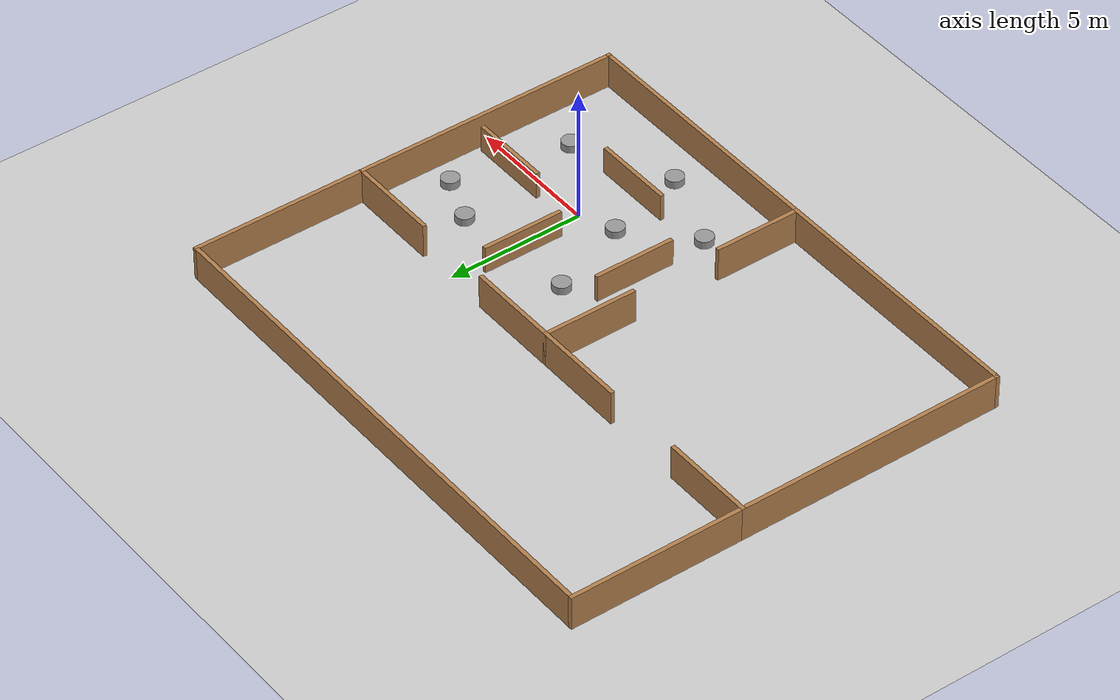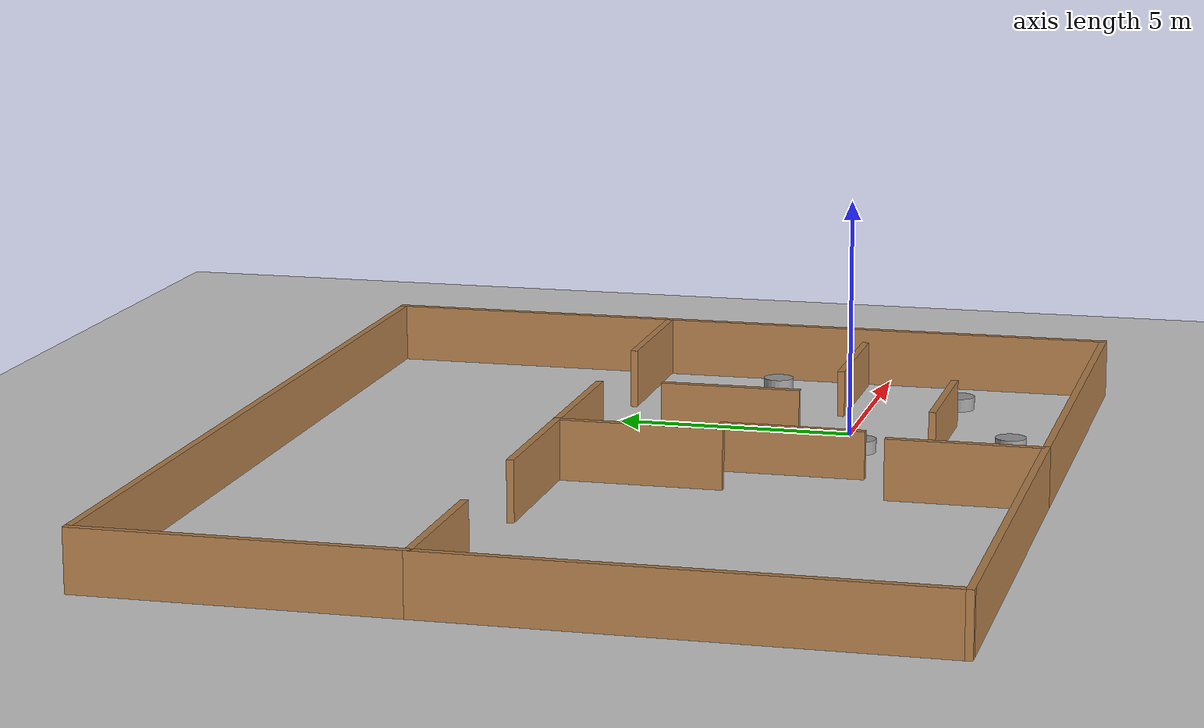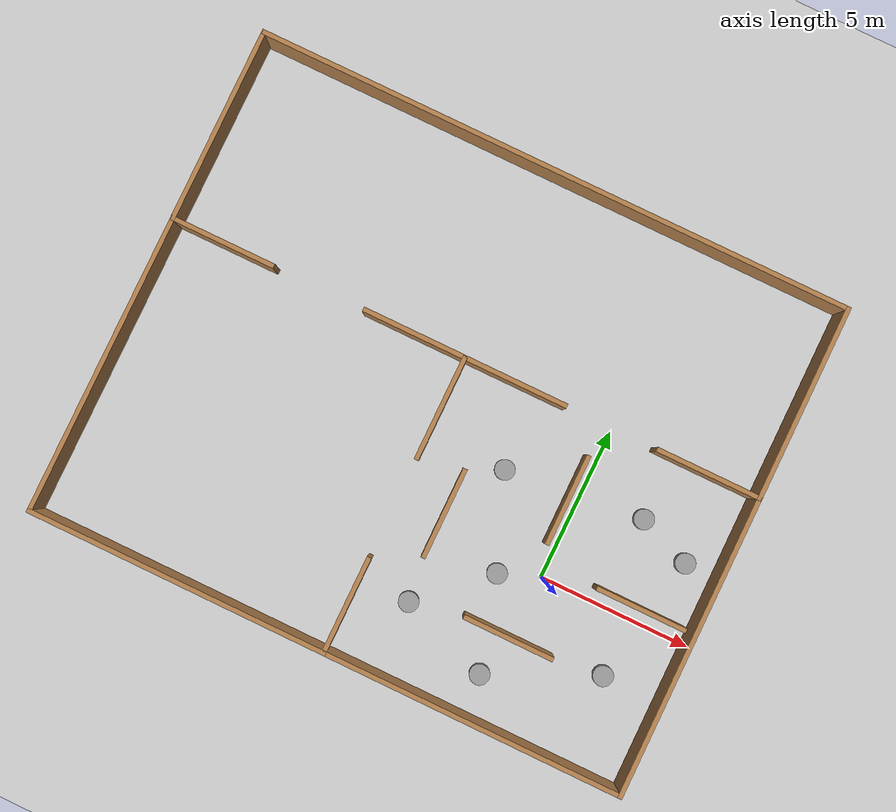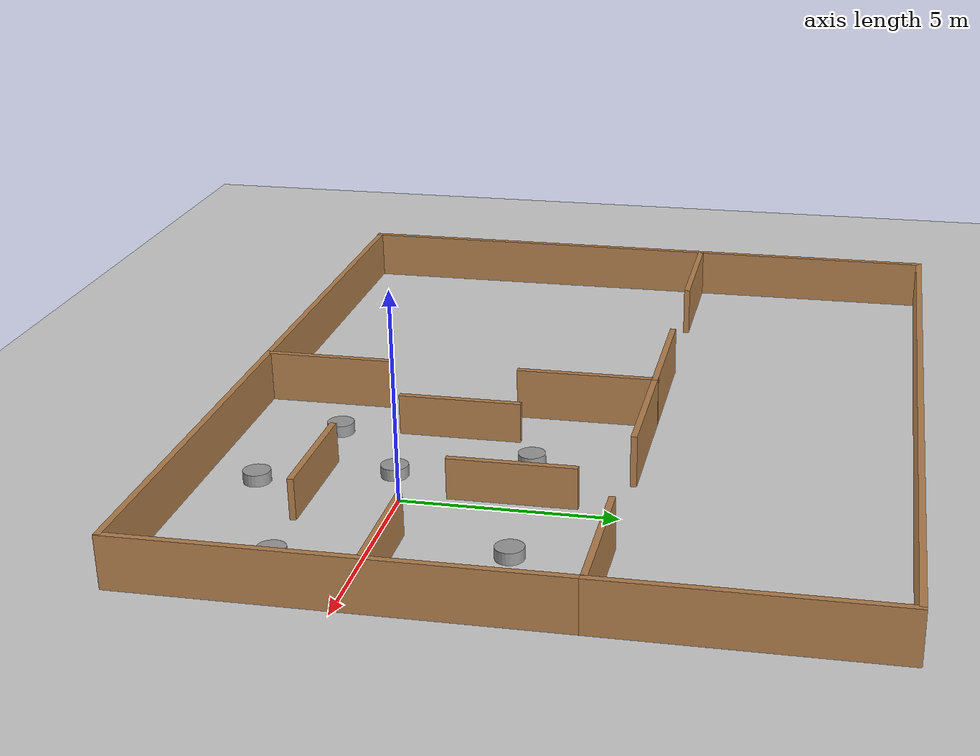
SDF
<sdf version="1.6">
 <world name="default">
  <light name="sun" type="directional">
   <pose>0 0 10 0 -0 0</pose>
   <diffuse>0.8 0.8 0.8 1</diffuse>
   <specular>0.2 0.2 0.2 1</specular>
   <attenuation>
    <range>1000</range>
    <constant>0.9</constant>
    <linear>0.01</linear>
    <quadratic>0.001</quadratic>
   </attenuation>
   <direction>-0.5 0.1 -0.9</direction>
  </light>
  <model name="ground_plane">
   <static>1</static>
   <link name="link">
    <collision name="collision">
     <geometry><plane><normal>0 0 1</normal><size>100 100</size></plane></geometry>
     <surface><friction><ode><mu>100</mu><mu2>50</mu2></ode></friction></surface>
    </collision>
    <visual name="visual">
     <cast_shadows>0</cast_shadows>
     <geometry><plane><normal>0 0 1</normal><size>100 100</size></plane></geometry>
     <material>
      <script><uri>file://media/materials/scripts/gazebo.material</uri><name>Gazebo/Grey</name></script>
     </material>
    </visual>
   </link>
  </model>
  <physics name="default_physics" default="0" type="ode">
   <real_time_update_rate>1000</real_time_update_rate>
   <max_step_size>0.001</max_step_size>
   <real_time_factor>1</real_time_factor>
   <ode>
    <solver>
     <type>quick</type>
     <iters>150</iters>
     <precon_iters>0</precon_iters>
     <sor>1.4</sor>
     <use_dynamic_moi_rescaling>1</use_dynamic_moi_rescaling>
    </solver>
    <constraints>
     <cfm>1e-05</cfm>
     <erp>0.2</erp>
     <contact_max_correcting_vel>2000</contact_max_correcting_vel>
     <contact_surface_layer>0.01</contact_surface_layer>
    </constraints>
   </ode>
  </physics>
  <scene><ambient>0.4 0.4 0.4 1</ambient><background>0.7 0.7 0.7 1</background><shadows>1</shadows></scene>
  <gravity>0 0 -9.8</gravity>
  <magnetic_field>6e-06 2.3e-05 -4.2e-05</magnetic_field>
  <atmosphere type="adiabatic"/>
  <spherical_coordinates>
   <surface_model>EARTH_WGS84</surface_model>
   <latitude_deg>0</latitude_deg>
   <longitude_deg>0</longitude_deg>
   <elevation>0</elevation>
   <heading_deg>0</heading_deg>
  </spherical_coordinates>
  <audio><device>default</device></audio>
  <model name="multi_rooms">
   <pose>-5.066 3.299 0 0 -0 0</pose>
   <link name="Wall_11">
    <collision name="Wall_11_Collision">
     <geometry><box><size>3.25 0.15 1.25</size></box></geometry>
     <pose>0 0 0.625 0 -0 0</pose>
    </collision>
    <visual name="Wall_11_Visual">
     <pose>0 0 0.625 0 -0 0</pose>
     <geometry><box><size>3.25 0.15 1.25</size></box></geometry>
     <material>
      <script><uri>file://media/materials/scripts/gazebo.material</uri><name>Gazebo/Wood</name></script>
      <ambient>1 1 1 1</ambient>
     </material>
     <meta><layer>0</layer></meta>
    </visual>
    <pose>0 -6.55 0 0 -0 1.5708</pose>
   </link>
   <link name="Wall_13">
    <collision name="Wall_13_Collision">
     <geometry><box><size>10 0.15 1.25</size></box></geometry>
     <pose>0 0 0.625 0 -0 0</pose>
    </collision>
    <visual name="Wall_13_Visual">
     <pose>0 0 0.625 0 -0 0</pose>
     <geometry><box><size>10 0.15 1.25</size></box></geometry>
     <material>
      <script><uri>file://media/materials/scripts/gazebo.material</uri><name>Gazebo/Wood</name></script>
      <ambient>1 1 1 1</ambient>
     </material>
     <meta><layer>0</layer></meta>
    </visual>
    <pose>-4.925 -8.1 0 0 -0 3.14159</pose>
   </link>
   <link name="Wall_2">
    <collision name="Wall_2_Collision">
     <geometry><box><size>10 0.15 1.25</size></box></geometry>
     <pose>0 0 0.625 0 -0 0</pose>
    </collision>
    <visual name="Wall_2_Visual">
     <pose>0 0 0.625 0 -0 0</pose>
     <geometry><box><size>10 0.15 1.25</size></box></geometry>
     <material>
      <script><uri>file://media/materials/scripts/gazebo.material</uri><name>Gazebo/Wood</name></script>
      <ambient>1 1 1 1</ambient>
     </material>
     <meta><layer>0</layer></meta>
    </visual>
    <pose>4.925 -8.1 0 0 -0 3.14159</pose>
   </link>
   <link name="Wall_20">
    <collision name="Wall_20_Collision">
     <geometry><box><size>3.5 0.15 1.25</size></box></geometry>
     <pose>0 0 0.625 0 -0 0</pose>
    </collision>
    <visual name="Wall_20_Visual">
     <pose>0 0 0.625 0 -0 0</pose>
     <geometry><box><size>3.5 0.15 1.25</size></box></geometry>
     <material>
      <script><uri>file://media/materials/scripts/gazebo.material</uri><name>Gazebo/Wood</name></script>
      <ambient>1 1 1 1</ambient>
     </material>
     <meta><layer>0</layer></meta>
    </visual>
    <pose>-1.675 1.75 0 0 -0 3.14159</pose>
   </link>
   <link name="Wall_22">
    <collision name="Wall_22_Collision">
     <geometry><box><size>3.5 0.15 1.25</size></box></geometry>
     <pose>0 0 0.625 0 -0 0</pose>
    </collision>
    <visual name="Wall_22_Visual">
     <pose>0 0 0.625 0 -0 0</pose>
     <geometry><box><size>3.5 0.15 1.25</size></box></geometry>
     <material>
      <script><uri>file://media/materials/scripts/gazebo.material</uri><name>Gazebo/Wood</name></script>
      <ambient>1 1 1 1</ambient>
     </material>
     <meta><layer>0</layer></meta>
    </visual>
    <pose>1.675 1.75 0 0 -0 0</pose>
   </link>
   <link name="Wall_24">
    <collision name="Wall_24_Collision">
     <geometry><box><size>3.5 0.15 1.25</size></box></geometry>
     <pose>0 0 0.625 0 -0 0</pose>
    </collision>
    <visual name="Wall_24_Visual">
     <pose>0 0 0.625 0 -0 0</pose>
     <geometry><box><size>3.5 0.15 1.25</size></box></geometry>
     <material>
      <script><uri>file://media/materials/scripts/gazebo.material</uri><name>Gazebo/Wood</name></script>
      <ambient>1 1 1 1</ambient>
     </material>
     <meta><layer>0</layer></meta>
    </visual>
    <pose>8.175 1.75 0 0 -0 3.14159</pose>
   </link>
   <link name="Wall_34">
    <collision name="Wall_34_Collision">
     <geometry><box><size>10 0.15 1.25</size></box></geometry>
     <pose>0 0 0.625 0 -0 0</pose>
    </collision>
    <visual name="Wall_34_Visual">
     <pose>0 0 0.625 0 -0 0</pose>
     <geometry><box><size>10 0.15 1.25</size></box></geometry>
     <material>
      <script><uri>file://media/materials/scripts/gazebo.material</uri><name>Gazebo/Wood</name></script>
      <ambient>1 1 1 1</ambient>
     </material>
     <meta><layer>0</layer></meta>
    </visual>
    <pose>-9.85 -3.175 0 0 -0 1.5708</pose>
   </link>
   <link name="Wall_35">
    <collision name="Wall_35_Collision">
     <geometry><box><size>3.5 0.15 1.25</size></box></geometry>
     <pose>0 0 0.625 0 -0 0</pose>
    </collision>
    <visual name="Wall_35_Visual">
     <pose>0 0 0.625 0 -0 0</pose>
     <geometry><box><size>3.5 0.15 1.25</size></box></geometry>
     <material>
      <script><uri>file://media/materials/scripts/gazebo.material</uri><name>Gazebo/Wood</name></script>
      <ambient>1 1 1 1</ambient>
     </material>
     <meta><layer>0</layer></meta>
    </visual>
    <pose>-8.175 1.75 0 0 -0 0</pose>
   </link>
   <link name="Wall_40">
    <collision name="Wall_40_Collision">
     <geometry><box><size>6.5 0.15 1.25</size></box></geometry>
     <pose>0 0 0.625 0 -0 0</pose>
    </collision>
    <visual name="Wall_40_Visual">
     <pose>0 0 0.625 0 -0 0</pose>
     <geometry><box><size>6.5 0.15 1.25</size></box></geometry>
     <material>
      <script><uri>file://media/materials/scripts/gazebo.material</uri><name>Gazebo/Wood</name></script>
      <ambient>1 1 1 1</ambient>
     </material>
     <meta><layer>0</layer></meta>
    </visual>
    <pose>-9.85 4.925 0 0 -0 1.5708</pose>
   </link>
   <link name="Wall_41">
    <collision name="Wall_41_Collision">
     <geometry><box><size>19.75 0.15 1.25</size></box></geometry>
     <pose>0 0 0.625 0 -0 0</pose>
    </collision>
    <visual name="Wall_41_Visual">
     <pose>0 0 0.625 0 -0 0</pose>
     <geometry><box><size>19.75 0.15 1.25</size></box></geometry>
     <material>
      <script><uri>file://media/materials/scripts/gazebo.material</uri><name>Gazebo/Wood</name></script>
      <ambient>1 1 1 1</ambient>
     </material>
     <meta><layer>0</layer></meta>
    </visual>
    <pose>-0.05 8.1 0 0 -0 0</pose>
   </link>
   <link name="Wall_43">
    <collision name="Wall_43_Collision">
     <geometry><box><size>6.5 0.15 1.25</size></box></geometry>
     <pose>0 0 0.625 0 -0 0</pose>
    </collision>
    <visual name="Wall_43_Visual">
     <pose>0 0 0.625 0 -0 0</pose>
     <geometry><box><size>6.5 0.15 1.25</size></box></geometry>
     <material>
      <script><uri>file://media/materials/scripts/gazebo.material</uri><name>Gazebo/Wood</name></script>
      <ambient>1 1 1 1</ambient>
     </material>
     <meta><layer>0</layer></meta>
    </visual>
    <pose>9.85 4.925 0 0 -0 1.5708</pose>
   </link>
   <link name="Wall_5">
    <collision name="Wall_5_Collision">
     <geometry><box><size>10 0.15 1.25</size></box></geometry>
     <pose>0 0 0.625 0 -0 0</pose>
    </collision>
    <visual name="Wall_5_Visual">
     <pose>0 0 0.625 0 -0 0</pose>
     <geometry><box><size>10 0.15 1.25</size></box></geometry>
     <material>
      <script><uri>file://media/materials/scripts/gazebo.material</uri><name>Gazebo/Wood</name></script>
      <ambient>1 1 1 1</ambient>
     </material>
     <meta><layer>0</layer></meta>
    </visual>
    <pose>9.85 -3.175 0 0 -0 1.5708</pose>
   </link>
   <link name="Wall_9">
    <collision name="Wall_9_Collision">
     <geometry><box><size>3.5 0.15 1.25</size></box></geometry>
     <pose>0 0 0.625 0 -0 0</pose>
    </collision>
    <visual name="Wall_9_Visual">
     <pose>0 0 0.625 0 -0 0</pose>
     <geometry><box><size>3.5 0.15 1.25</size></box></geometry>
     <material>
      <script><uri>file://media/materials/scripts/gazebo.material</uri><name>Gazebo/Wood</name></script>
      <ambient>1 1 1 1</ambient>
     </material>
     <meta><layer>0</layer></meta>
    </visual>
    <pose>0 0.075 0 0 -0 -1.5708</pose>
   </link>
   <static>1</static>
  </model>
  <model name="h_wall">
   <pose>-0.380823 2.51022 0 0 -0 0</pose>
   <link name="Wall_0">
    <collision name="Wall_0_Collision">
     <geometry><box><size>3 0.15 1</size></box></geometry>
     <pose>0 0 0.5 0 -0 0</pose>
    </collision>
    <visual name="Wall_0_Visual">
     <pose>0 0 0.5 0 -0 0</pose>
     <geometry><box><size>3 0.15 1</size></box></geometry>
     <material>
      <script><uri>file://media/materials/scripts/gazebo.material</uri><name>Gazebo/Wood</name></script>
      <ambient>1 1 1 1</ambient>
     </material>
     <meta><layer>0</layer></meta>
    </visual>
    <pose>0 0 0 0 -0 -1.5708</pose>
   </link>
   <static>1</static>
  </model>
  <model name="v_wall">
   <pose>-0.218292 -2.0316 0 0 -0 0</pose>
   <link name="Wall_0">
    <collision name="Wall_0_Collision">
     <geometry><box><size>3 0.15 1</size></box></geometry>
     <pose>0 0 0.5 0 -0 0</pose>
    </collision>
    <visual name="Wall_0_Visual">
     <pose>0 0 0.5 0 -0 0</pose>
     <geometry><box><size>3 0.15 1</size></box></geometry>
     <material>
      <script><uri>file://media/materials/scripts/gazebo.material</uri><name>Gazebo/Wood</name></script>
      <ambient>1 1 1 1</ambient>
     </material>
     <meta><layer>0</layer></meta>
    </visual>
   </link>
   <static>1</static>
  </model>
  <model name="c0">
   <link name="link">
    <inertial>
     <mass>1</mass>
     <inertia><ixx>0.145833</ixx><ixy>0</ixy><ixz>0</ixz><iyy>0.145833</iyy><iyz>0</iyz><izz>0.125</izz></inertia>
    </inertial>
    <visual name="visual">
     <geometry><cylinder><radius>0.326555</radius><length>0.51474</length></cylinder></geometry>
     <material>
      <script><name>Gazebo/Grey</name><uri>file://media/materials/scripts/gazebo.material</uri></script>
     </material>
    </visual>
    <collision name="collision">
     <geometry><cylinder><radius>0.326555</radius><length>0.51474</length></cylinder></geometry>
     <surface>
      <friction>
       <ode><mu>1</mu><mu2>1</mu2><fdir1>0 0 0</fdir1><slip1>0</slip1><slip2>0</slip2></ode>
       <torsional>
        <coefficient>1</coefficient>
        <patch_radius>0</patch_radius>
        <surface_radius>0</surface_radius>
        <use_patch_radius>1</use_patch_radius>
        <ode><slip>0</slip></ode>
       </torsional>
      </friction>
      <bounce><restitution_coefficient>0</restitution_coefficient><threshold>1e+06</threshold></bounce>
      <contact>
       <collide_without_contact>0</collide_without_contact>
       <collide_without_contact_bitmask>1</collide_without_contact_bitmask>
       <collide_bitmask>1</collide_bitmask>
       <ode>
        <soft_cfm>0</soft_cfm>
        <soft_erp>0.2</soft_erp>
        <kp>1e+13</kp>
        <kd>1</kd>
        <max_vel>0.01</max_vel>
        <min_depth>0</min_depth>
       </ode>
       <bullet>
        <split_impulse>1</split_impulse>
        <split_impulse_penetration_threshold>-0.01</split_impulse_penetration_threshold>
        <soft_cfm>0</soft_cfm>
        <soft_erp>0.2</soft_erp>
        <kp>1e+13</kp>
        <kd>1</kd>
       </bullet>
      </contact>
     </surface>
    </collision>
   </link>
   <static>1</static>
   <pose>-3.39752 -2.43216 0 0 -0 0</pose>
  </model>
  <model name="c0_0">
   <link name="link">
    <inertial>
     <mass>1</mass>
     <inertia><ixx>0.145833</ixx><ixy>0</ixy><ixz>0</ixz><iyy>0.145833</iyy><iyz>0</iyz><izz>0.125</izz></inertia>
    </inertial>
    <visual name="visual">
     <geometry><cylinder><radius>0.326555</radius><length>0.51474</length></cylinder></geometry>
     <material>
      <script><name>Gazebo/Grey</name><uri>file://media/materials/scripts/gazebo.material</uri></script>
     </material>
    </visual>
    <collision name="collision">
     <geometry><cylinder><radius>0.326555</radius><length>0.51474</length></cylinder></geometry>
     <surface>
      <friction>
       <ode><mu>1</mu><mu2>1</mu2><fdir1>0 0 0</fdir1><slip1>0</slip1><slip2>0</slip2></ode>
       <torsional>
        <coefficient>1</coefficient>
        <patch_radius>0</patch_radius>
        <surface_radius>0</surface_radius>
        <use_patch_radius>1</use_patch_radius>
        <ode><slip>0</slip></ode>
       </torsional>
      </friction>
      <bounce><restitution_coefficient>0</restitution_coefficient><threshold>1e+06</threshold></bounce>
      <contact>
       <collide_without_contact>0</collide_without_contact>
       <collide_without_contact_bitmask>1</collide_without_contact_bitmask>
       <collide_bitmask>1</collide_bitmask>
       <ode>
        <soft_cfm>0</soft_cfm>
        <soft_erp>0.2</soft_erp>
        <kp>1e+13</kp>
        <kd>1</kd>
        <max_vel>0.01</max_vel>
        <min_depth>0</min_depth>
       </ode>
       <bullet>
        <split_impulse>1</split_impulse>
        <split_impulse_penetration_threshold>-0.01</split_impulse_penetration_threshold>
        <soft_cfm>0</soft_cfm>
        <soft_erp>0.2</soft_erp>
        <kp>1e+13</kp>
        <kd>1</kd>
       </bullet>
      </contact>
     </surface>
    </collision>
   </link>
   <static>1</static>
   <pose>2.07261 2.99442 0 0 -0 0</pose>
  </model>
  <model name="c0_1">
   <link name="link">
    <inertial>
     <mass>1</mass>
     <inertia><ixx>0.145833</ixx><ixy>0</ixy><ixz>0</ixz><iyy>0.145833</iyy><iyz>0</iyz><izz>0.125</izz></inertia>
    </inertial>
    <visual name="visual">
     <geometry><cylinder><radius>0.326555</radius><length>0.51474</length></cylinder></geometry>
     <material>
      <script><name>Gazebo/Grey</name><uri>file://media/materials/scripts/gazebo.material</uri></script>
     </material>
    </visual>
    <collision name="collision">
     <geometry><cylinder><radius>0.326555</radius><length>0.51474</length></cylinder></geometry>
     <surface>
      <friction>
       <ode><mu>1</mu><mu2>1</mu2><fdir1>0 0 0</fdir1><slip1>0</slip1><slip2>0</slip2></ode>
       <torsional>
        <coefficient>1</coefficient>
        <patch_radius>0</patch_radius>
        <surface_radius>0</surface_radius>
        <use_patch_radius>1</use_patch_radius>
        <ode><slip>0</slip></ode>
       </torsional>
      </friction>
      <bounce><restitution_coefficient>0</restitution_coefficient><threshold>1e+06</threshold></bounce>
      <contact>
       <collide_without_contact>0</collide_without_contact>
       <collide_without_contact_bitmask>1</collide_without_contact_bitmask>
       <collide_bitmask>1</collide_bitmask>
       <ode>
        <soft_cfm>0</soft_cfm>
        <soft_erp>0.2</soft_erp>
        <kp>1e+13</kp>
        <kd>1</kd>
        <max_vel>0.01</max_vel>
        <min_depth>0</min_depth>
       </ode>
       <bullet>
        <split_impulse>1</split_impulse>
        <split_impulse_penetration_threshold>-0.01</split_impulse_penetration_threshold>
        <soft_cfm>0</soft_cfm>
        <soft_erp>0.2</soft_erp>
        <kp>1e+13</kp>
        <kd>1</kd>
       </bullet>
      </contact>
     </surface>
    </collision>
   </link>
   <static>1</static>
   <pose>2.98172 -1.89646 0 0 -0 0</pose>
  </model>
  <model name="c0_2">
   <link name="link">
    <inertial>
     <mass>1</mass>
     <inertia><ixx>0.145833</ixx><ixy>0</ixy><ixz>0</ixz><iyy>0.145833</iyy><iyz>0</iyz><izz>0.125</izz></inertia>
    </inertial>
    <visual name="visual">
     <geometry><cylinder><radius>0.326555</radius><length>0.51474</length></cylinder></geometry>
     <material>
      <script><name>Gazebo/Grey</name><uri>file://media/materials/scripts/gazebo.material</uri></script>
     </material>
    </visual>
    <collision name="collision">
     <geometry><cylinder><radius>0.326555</radius><length>0.51474</length></cylinder></geometry>
     <surface>
      <friction>
       <ode><mu>1</mu><mu2>1</mu2><fdir1>0 0 0</fdir1><slip1>0</slip1><slip2>0</slip2></ode>
       <torsional>
        <coefficient>1</coefficient>
        <patch_radius>0</patch_radius>
        <surface_radius>0</surface_radius>
        <use_patch_radius>1</use_patch_radius>
        <ode><slip>0</slip></ode>
       </torsional>
      </friction>
      <bounce><restitution_coefficient>0</restitution_coefficient><threshold>1e+06</threshold></bounce>
      <contact>
       <collide_without_contact>0</collide_without_contact>
       <collide_without_contact_bitmask>1</collide_without_contact_bitmask>
       <collide_bitmask>1</collide_bitmask>
       <ode>
        <soft_cfm>0</soft_cfm>
        <soft_erp>0.2</soft_erp>
        <kp>1e+13</kp>
        <kd>1</kd>
        <max_vel>0.01</max_vel>
        <min_depth>0</min_depth>
       </ode>
       <bullet>
        <split_impulse>1</split_impulse>
        <split_impulse_penetration_threshold>-0.01</split_impulse_penetration_threshold>
        <soft_cfm>0</soft_cfm>
        <soft_erp>0.2</soft_erp>
        <kp>1e+13</kp>
        <kd>1</kd>
       </bullet>
      </contact>
     </surface>
    </collision>
   </link>
   <static>1</static>
   <pose>-2.46825 2.51908 0 0 -0 0</pose>
  </model>
  <model name="v_wall_0">
   <pose>3.03934 0.481545 0 0 -0 0</pose>
   <link name="Wall_0">
    <collision name="Wall_0_Collision">
     <geometry><box><size>3 0.15 1</size></box></geometry>
     <pose>0 0 0.5 0 -0 0</pose>
    </collision>
    <visual name="Wall_0_Visual">
     <pose>0 0 0.5 0 -0 0</pose>
     <geometry><box><size>3 0.15 1</size></box></geometry>
     <material>
      <script><uri>file://media/materials/scripts/gazebo.material</uri><name>Gazebo/Wood</name></script>
      <ambient>1 1 1 1</ambient>
     </material>
     <meta><layer>0</layer></meta>
    </visual>
   </link>
   <static>1</static>
  </model>
  <model name="h_wall_0">
   <pose>-3.59327 0.522539 0 0 -0 0</pose>
   <link name="Wall_0">
    <collision name="Wall_0_Collision">
     <geometry><box><size>3 0.15 1</size></box></geometry>
     <pose>0 0 0.5 0 -0 0</pose>
    </collision>
    <visual name="Wall_0_Visual">
     <pose>0 0 0.5 0 -0 0</pose>
     <geometry><box><size>3 0.15 1</size></box></geometry>
     <material>
      <script><uri>file://media/materials/scripts/gazebo.material</uri><name>Gazebo/Wood</name></script>
      <ambient>1 1 1 1</ambient>
     </material>
     <meta><layer>0</layer></meta>
    </visual>
    <pose>0 0 0 0 -0 -1.5708</pose>
   </link>
   <static>1</static>
  </model>
  <model name="c0_3">
   <link name="link">
    <inertial>
     <mass>1</mass>
     <inertia><ixx>0.145833</ixx><ixy>0</ixy><ixz>0</ixz><iyy>0.145833</iyy><iyz>0</iyz><izz>0.125</izz></inertia>
    </inertial>
    <visual name="visual">
     <geometry><cylinder><radius>0.326555</radius><length>0.51474</length></cylinder></geometry>
     <material>
      <script><name>Gazebo/Grey</name><uri>file://media/materials/scripts/gazebo.material</uri></script>
     </material>
    </visual>
    <collision name="collision">
     <geometry><cylinder><radius>0.326555</radius><length>0.51474</length></cylinder></geometry>
     <surface>
      <friction>
       <ode><mu>1</mu><mu2>1</mu2><fdir1>0 0 0</fdir1><slip1>0</slip1><slip2>0</slip2></ode>
       <torsional>
        <coefficient>1</coefficient>
        <patch_radius>0</patch_radius>
        <surface_radius>0</surface_radius>
        <use_patch_radius>1</use_patch_radius>
        <ode><slip>0</slip></ode>
       </torsional>
      </friction>
      <bounce><restitution_coefficient>0</restitution_coefficient><threshold>1e+06</threshold></bounce>
      <contact>
       <collide_without_contact>0</collide_without_contact>
       <collide_without_contact_bitmask>1</collide_without_contact_bitmask>
       <collide_bitmask>1</collide_bitmask>
       <ode>
        <soft_cfm>0</soft_cfm>
        <soft_erp>0.2</soft_erp>
        <kp>1e+13</kp>
        <kd>1</kd>
        <max_vel>0.01</max_vel>
        <min_depth>0</min_depth>
       </ode>
       <bullet>
        <split_impulse>1</split_impulse>
        <split_impulse_penetration_threshold>-0.01</split_impulse_penetration_threshold>
        <soft_cfm>0</soft_cfm>
        <soft_erp>0.2</soft_erp>
        <kp>1e+13</kp>
        <kd>1</kd>
       </bullet>
      </contact>
     </surface>
    </collision>
   </link>
   <static>1</static>
   <pose>-1.30796 -0.471901 0 0 -0 0</pose>
  </model>
  <model name="c0_4">
   <link name="link">
    <inertial>
     <mass>1</mass>
     <inertia><ixx>0.145833</ixx><ixy>0</ixy><ixz>0</ixz><iyy>0.145833</iyy><iyz>0</iyz><izz>0.125</izz></inertia>
    </inertial>
    <visual name="visual">
     <geometry><cylinder><radius>0.326555</radius><length>0.51474</length></cylinder></geometry>
     <material>
      <script><name>Gazebo/Grey</name><uri>file://media/materials/scripts/gazebo.material</uri></script>
     </material>
    </visual>
    <collision name="collision">
     <geometry><cylinder><radius>0.326555</radius><length>0.51474</length></cylinder></geometry>
     <surface>
      <friction>
       <ode><mu>1</mu><mu2>1</mu2><fdir1>0 0 0</fdir1><slip1>0</slip1><slip2>0</slip2></ode>
       <torsional>
        <coefficient>1</coefficient>
        <patch_radius>0</patch_radius>
        <surface_radius>0</surface_radius>
        <use_patch_radius>1</use_patch_radius>
        <ode><slip>0</slip></ode>
       </torsional>
      </friction>
      <bounce><restitution_coefficient>0</restitution_coefficient><threshold>1e+06</threshold></bounce>
      <contact>
       <collide_without_contact>0</collide_without_contact>
       <collide_without_contact_bitmask>1</collide_without_contact_bitmask>
       <collide_bitmask>1</collide_bitmask>
       <ode>
        <soft_cfm>0</soft_cfm>
        <soft_erp>0.2</soft_erp>
        <kp>1e+13</kp>
        <kd>1</kd>
        <max_vel>0.01</max_vel>
        <min_depth>0</min_depth>
       </ode>
       <bullet>
        <split_impulse>1</split_impulse>
        <split_impulse_penetration_threshold>-0.01</split_impulse_penetration_threshold>
        <soft_cfm>0</soft_cfm>
        <soft_erp>0.2</soft_erp>
        <kp>1e+13</kp>
        <kd>1</kd>
       </bullet>
      </contact>
     </surface>
    </collision>
   </link>
   <static>1</static>
   <pose>-0.465784 -3.4973 0 0 -0 0</pose>
  </model>
  <model name="c0_5">
   <link name="link">
    <inertial>
     <mass>1</mass>
     <inertia><ixx>0.145833</ixx><ixy>0</ixy><ixz>0</ixz><iyy>0.145833</iyy><iyz>0</iyz><izz>0.125</izz></inertia>
    </inertial>
    <visual name="visual">
     <geometry><cylinder><radius>0.326555</radius><length>0.51474</length></cylinder></geometry>
     <material>
      <script><name>Gazebo/Grey</name><uri>file://media/materials/scripts/gazebo.material</uri></script>
     </material>
    </visual>
    <collision name="collision">
     <geometry><cylinder><radius>0.326555</radius><length>0.51474</length></cylinder></geometry>
     <surface>
      <friction>
       <ode><mu>1</mu><mu2>1</mu2><fdir1>0 0 0</fdir1><slip1>0</slip1><slip2>0</slip2></ode>
       <torsional>
        <coefficient>1</coefficient>
        <patch_radius>0</patch_radius>
        <surface_radius>0</surface_radius>
        <use_patch_radius>1</use_patch_radius>
        <ode><slip>0</slip></ode>
       </torsional>
      </friction>
      <bounce><restitution_coefficient>0</restitution_coefficient><threshold>1e+06</threshold></bounce>
      <contact>
       <collide_without_contact>0</collide_without_contact>
       <collide_without_contact_bitmask>1</collide_without_contact_bitmask>
       <collide_bitmask>1</collide_bitmask>
       <ode>
        <soft_cfm>0</soft_cfm>
        <soft_erp>0.2</soft_erp>
        <kp>1e+13</kp>
        <kd>1</kd>
        <max_vel>0.01</max_vel>
        <min_depth>0</min_depth>
       </ode>
       <bullet>
        <split_impulse>1</split_impulse>
        <split_impulse_penetration_threshold>-0.01</split_impulse_penetration_threshold>
        <soft_cfm>0</soft_cfm>
        <soft_erp>0.2</soft_erp>
        <kp>1e+13</kp>
        <kd>1</kd>
       </bullet>
      </contact>
     </surface>
    </collision>
   </link>
   <static>1</static>
   <pose>3.80076 2.31819 0 0 -0 0</pose>
  </model>
 </world>
</sdf>
